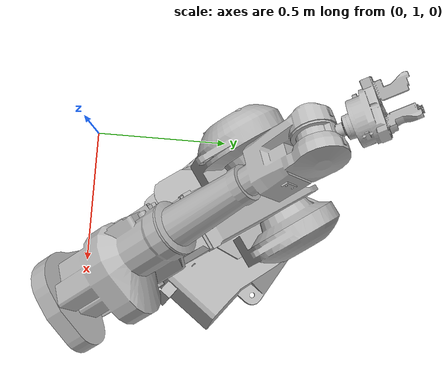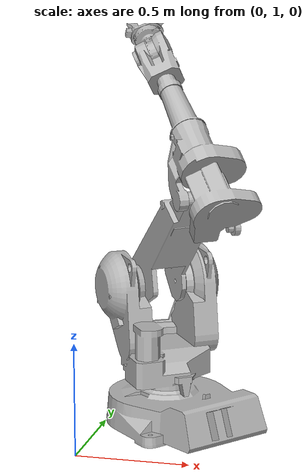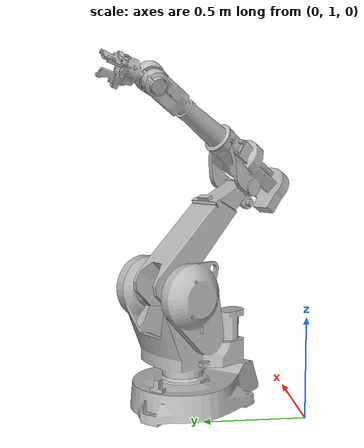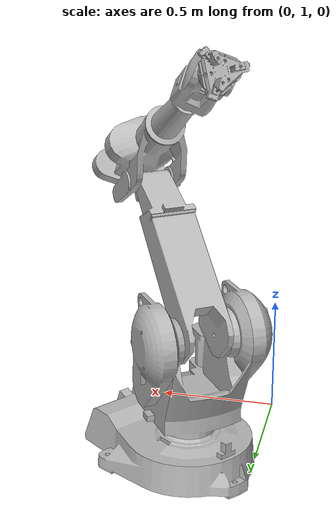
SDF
<sdf version='1.6'>
  <model name='robotarm'>
    <link name='base_link'>
      <pose frame=''>0 0 0 0 -0 0</pose>
      <inertial>
        <pose frame=''>0.334998 1.51909 0.069825 0 -0 0</pose>
        <mass>45.1008</mass>
        <inertia>
          <ixx>1.18691</ixx>
          <ixy>0.363372</ixy>
          <ixz>-0.0186992</ixz>
          <iyy>1.37165</iyy>
          <iyz>0.0150255</iyz>
          <izz>2.38903</izz>
        </inertia>
      </inertial>
      <collision name='base_link_collision'>
        <pose frame=''>0 0 0 0 -0 0</pose>
        <geometry>
          <mesh>
            <scale>1 1 1</scale>
            <uri>/home/hiep/Desktop/ros_linuxcnc_gazebo/gazebo_models/meshes/base_link.STL</uri>
          </mesh>
        </geometry>
      </collision>
      <visual name='base_link_visual'>
        <pose frame=''>0 0 0 0 -0 0</pose>
        <geometry>
          <mesh>
            <scale>1 1 1</scale>
            <uri>/home/hiep/Desktop/ros_linuxcnc_gazebo/gazebo_models/meshes/base_link.STL</uri>
          </mesh>
        </geometry>
      </visual>
    </link>
    <link name='link1'>
      <pose frame=''>0.260383 1.57667 0.164 0 0 2.18019</pose>
      <inertial>
        <pose frame=''>0.033839 0.0183 0.274869 0 -0 0</pose>
        <mass>47.994</mass>
        <inertia>
          <ixx>2.26462</ixx>
          <ixy>0.104482</ixy>
          <ixz>-0.357348</ixz>
          <iyy>1.75195</iyy>
          <iyz>0.019319</iyz>
          <izz>1.63366</izz>
        </inertia>
      </inertial>
      <collision name='link1_collision'>
        <pose frame=''>0 0 0 0 -0 0</pose>
        <geometry>
          <mesh>
            <scale>1 1 1</scale>
            <uri>/home/hiep/Desktop/ros_linuxcnc_gazebo/gazebo_models/meshes/link1.STL</uri>
          </mesh>
        </geometry>
      </collision>
      <visual name='link1_visual'>
        <pose frame=''>0 0 0 0 -0 0</pose>
        <geometry>
          <mesh>
            <scale>1 1 1</scale>
            <uri>/home/hiep/Desktop/ros_linuxcnc_gazebo/gazebo_models/meshes/link1.STL</uri>
          </mesh>
        </geometry>
      </visual>
    </link>
    <joint name='joint1' type='revolute'>
      <child>link1</child>
      <parent>base_link</parent>
      <axis>
        <xyz>-0 0 1</xyz>
        <limit>
          <lower>-1e+16</lower>
          <upper>1e+16</upper>
        </limit>
        <dynamics>
          <spring_reference>0</spring_reference>
          <spring_stiffness>0</spring_stiffness>
        </dynamics>
        <use_parent_model_frame>1</use_parent_model_frame>
      </axis>
    </joint>
    <link name='link2'>
      <pose frame=''>0.203146 1.65867 0.604 0 -0.784351 2.18019</pose>
      <inertial>
        <pose frame=''>0.050873 -0.00653 0.321534 0 -0 0</pose>
        <mass>15.893</mass>
        <inertia>
          <ixx>0.642112</ixx>
          <ixy>0.00117651</ixy>
          <ixz>0.0234642</ixz>
          <iyy>0.630494</iyy>
          <iyz>0.000756306</iyz>
          <izz>0.0852092</izz>
        </inertia>
      </inertial>
      <collision name='link2_collision'>
        <pose frame=''>0 0 0 0 -0 0</pose>
        <geometry>
          <mesh>
            <scale>1 1 1</scale>
            <uri>/home/hiep/Desktop/ros_linuxcnc_gazebo/gazebo_models/meshes/link2.STL</uri>
          </mesh>
        </geometry>
      </collision>
      <visual name='link2_visual'>
        <pose frame=''>0 0 0 0 -0 0</pose>
        <geometry>
          <mesh>
            <scale>1 1 1</scale>
            <uri>/home/hiep/Desktop/ros_linuxcnc_gazebo/gazebo_models/meshes/link2.STL</uri>
          </mesh>
        </geometry>
      </visual>
    </link>
    <joint name='joint2' type='revolute'>
      <child>link2</child>
      <parent>link1</parent>
      <axis>
        <xyz>0.819996 0.572369 -0</xyz>
        <limit>
          <lower>-1e+16</lower>
          <upper>1e+16</upper>
        </limit>
        <dynamics>
          <spring_reference>0</spring_reference>
          <spring_stiffness>0</spring_stiffness>
        </dynamics>
        <use_parent_model_frame>1</use_parent_model_frame>
      </axis>
    </joint>
    <link name='link3'>
      <pose frame=''>0.488179 1.25032 1.10303 0 -0.567323 2.18019</pose>
      <inertial>
        <pose frame=''>-0.00093 -0.015739 0.116199 0 -0 0</pose>
        <mass>14.5707</mass>
        <inertia>
          <ixx>0.114594</ixx>
          <ixy>-0.00406395</ixy>
          <ixz>-0.019169</ixz>
          <iyy>0.328228</iyy>
          <iyz>0.00362097</iyz>
          <izz>0.336993</izz>
        </inertia>
      </inertial>
      <collision name='link3_collision'>
        <pose frame=''>0 0 0 0 -0 0</pose>
        <geometry>
          <mesh>
            <scale>1 1 1</scale>
            <uri>/home/hiep/Desktop/ros_linuxcnc_gazebo/gazebo_models/meshes/link3.STL</uri>
          </mesh>
        </geometry>
      </collision>
      <visual name='link3_visual'>
        <pose frame=''>0 0 0 0 -0 0</pose>
        <geometry>
          <mesh>
            <scale>1 1 1</scale>
            <uri>/home/hiep/Desktop/ros_linuxcnc_gazebo/gazebo_models/meshes/link3.STL</uri>
          </mesh>
        </geometry>
      </visual>
    </link>
    <joint name='joint3' type='revolute'>
      <child>link3</child>
      <parent>link2</parent>
      <axis>
        <xyz>0.819996 0.572369 -0</xyz>
        <limit>
          <lower>-1e+16</lower>
          <upper>1e+16</upper>
        </limit>
        <dynamics>
          <spring_reference>0</spring_reference>
          <spring_stiffness>0</spring_stiffness>
        </dynamics>
        <use_parent_model_frame>1</use_parent_model_frame>
      </axis>
    </joint>
    <link name='link4'>
      <pose frame=''>0.347413 1.4616 1.42484 2.63449 -0.567323 2.18019</pose>
      <inertial>
        <pose frame=''>0.17725 0.001085 0.000301 0 -0 0</pose>
        <mass>6.40519</mass>
        <inertia>
          <ixx>0.0158029</ixx>
          <ixy>-0.00138023</ixy>
          <ixz>-0.00013262</ixz>
          <iyy>0.183118</iyy>
          <iyz>-1.39681e-05</iyz>
          <izz>0.186522</izz>
        </inertia>
      </inertial>
      <collision name='link4_collision'>
        <pose frame=''>0 0 0 0 -0 0</pose>
        <geometry>
          <mesh>
            <scale>1 1 1</scale>
            <uri>/home/hiep/Desktop/ros_linuxcnc_gazebo/gazebo_models/meshes/link4.STL</uri>
          </mesh>
        </geometry>
      </collision>
      <visual name='link4_visual'>
        <pose frame=''>0 0 0 0 -0 0</pose>
        <geometry>
          <mesh>
            <scale>1 1 1</scale>
            <uri>/home/hiep/Desktop/ros_linuxcnc_gazebo/gazebo_models/meshes/link4.STL</uri>
          </mesh>
        </geometry>
      </visual>
    </link>
    <joint name='joint4' type='revolute'>
      <child>link4</child>
      <parent>link3</parent>
      <axis>
        <xyz>0.482703 -0.691538 -0.537376</xyz>
        <limit>
          <lower>-1e+16</lower>
          <upper>1e+16</upper>
        </limit>
        <dynamics>
          <spring_reference>0</spring_reference>
          <spring_stiffness>0</spring_stiffness>
        </dynamics>
        <use_parent_model_frame>1</use_parent_model_frame>
      </axis>
    </joint>
    <link name='link5'>
      <pose frame=''>0.166393 1.72094 1.62636 2.70206 -0.274667 2.01691</pose>
      <inertial>
        <pose frame=''>-0.00023 0.003838 0.000899 0 -0 0</pose>
        <mass>0.371991</mass>
        <inertia>
          <ixx>0.000356518</ixx>
          <ixy>-1.14691e-07</ixy>
          <ixz>2.45919e-06</ixz>
          <iyy>0.000549795</iyy>
          <iyz>4.47423e-07</iyz>
          <izz>0.000334715</izz>
        </inertia>
      </inertial>
      <collision name='link5_collision'>
        <pose frame=''>0 0 0 0 -0 0</pose>
        <geometry>
          <mesh>
            <scale>1 1 1</scale>
            <uri>/home/hiep/Desktop/ros_linuxcnc_gazebo/gazebo_models/meshes/link5.STL</uri>
          </mesh>
        </geometry>
      </collision>
      <visual name='link5_visual'>
        <pose frame=''>0 0 0 0 -0 0</pose>
        <geometry>
          <mesh>
            <scale>1 1 1</scale>
            <uri>/home/hiep/Desktop/ros_linuxcnc_gazebo/gazebo_models/meshes/link5.STL</uri>
          </mesh>
        </geometry>
      </visual>
    </link>
    <joint name='joint5' type='revolute'>
      <child>link5</child>
      <parent>link4</parent>
      <axis>
        <xyz>0.866178 0.286339 0.409569</xyz>
        <limit>
          <lower>-1e+16</lower>
          <upper>1e+16</upper>
        </limit>
        <dynamics>
          <spring_reference>0</spring_reference>
          <spring_stiffness>0</spring_stiffness>
        </dynamics>
        <use_parent_model_frame>1</use_parent_model_frame>
      </axis>
    </joint>
    <link name='link6'>
      <pose frame=''>0.166393 1.72094 1.62636 -1.77594 -0.274667 2.01691</pose>
      <inertial>
        <pose frame=''>0.146758 -0.00068 -0.002569 0 -0 0</pose>
        <mass>1.34069</mass>
        <inertia>
          <ixx>0.00293346</ixx>
          <ixy>-1.00167e-06</ixy>
          <ixz>-8.33585e-07</ixz>
          <iyy>0.00437356</iyy>
          <iyz>5.3928e-06</iyz>
          <izz>0.00438588</izz>
        </inertia>
      </inertial>
      <collision name='link6_collision'>
        <pose frame=''>0 0 0 0 -0 0</pose>
        <geometry>
          <mesh>
            <scale>1 1 1</scale>
            <uri>/home/hiep/Desktop/ros_linuxcnc_gazebo/gazebo_models/meshes/link6.STL</uri>
          </mesh>
        </geometry>
      </collision>
      <visual name='link6_visual'>
        <pose frame=''>0 0 0 0 -0 0</pose>
        <geometry>
          <mesh>
            <scale>1 1 1</scale>
            <uri>/home/hiep/Desktop/ros_linuxcnc_gazebo/gazebo_models/meshes/link6.STL</uri>
          </mesh>
        </geometry>
      </visual>
    </link>
    <joint name='joint6' type='revolute'>
      <child>link6</child>
      <parent>link5</parent>
      <axis>
        <xyz>0.415293 -0.868313 -0.271227</xyz>
        <limit>
          <lower>-1e+16</lower>
          <upper>1e+16</upper>
        </limit>
        <dynamics>
          <spring_reference>0</spring_reference>
          <spring_stiffness>0</spring_stiffness>
        </dynamics>
        <use_parent_model_frame>1</use_parent_model_frame>
      </axis>
    </joint>
    <plugin name="joint_angle_control" filename="/home/hiep/Desktop/ros_linuxcnc_gazebo/joint_angle_control/build/libjoint_angle_control.so"/>
  </model>
</sdf>
